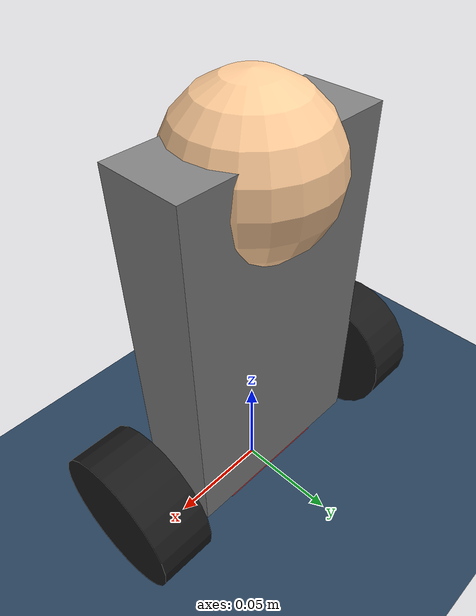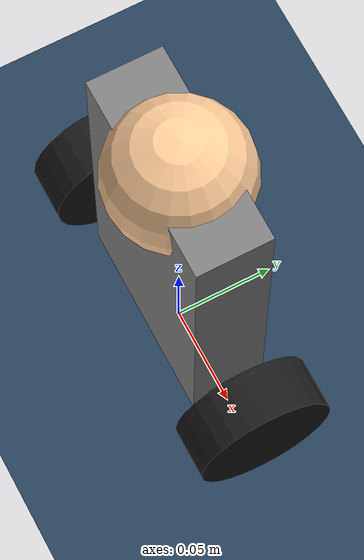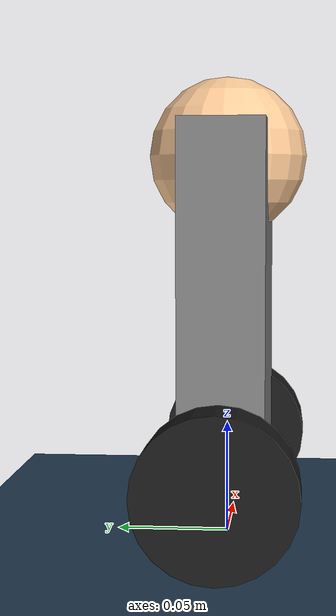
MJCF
<mujoco model="robot scene">
  <compiler angle="radian"/>
  <option timestep="0.000025"/>

  <include file="robot_balance.xml"/>

  <statistic center="0 0 0.1" extent="0.8"/>

  <visual>
    <headlight diffuse="0.6 0.6 0.6" ambient="0.3 0.3 0.3" specular="0 0 0"/>
    <rgba haze="0.15 0.25 0.35 1"/>
    <global azimuth="120" elevation="-20"/>
  </visual>

  <asset>
    <texture type="skybox" builtin="gradient" rgb1="0.8 0.8 0.8" rgb2="0 0 0" width="512" height="3072"/>
    <texture type="2d" name="groundplane" builtin="checker" mark="edge" rgb1="0.2 0.3 0.4" rgb2="0.1 0.2 0.3"
      markrgb="0.8 0.8 0.8" width="300" height="300"/>
    <material name="groundplane" texture="groundplane" texuniform="true" texrepeat="5 5" reflectance="0.2"/>
    <texture type="2d" name="wheel_texture" builtin="checker" mark="edge" rgb1="0.0 0.0 0.0" rgb2="0.2 0.2 0.2"
      markrgb="0.3 0.3 0.3" width="300" height="300"/>
    <material name="wheel_material" texture="wheel_texture" texuniform="true" texrepeat="5 5"/>
  </asset>

  <worldbody>
    <light pos="0 0 1.5" dir="-0.5 -0.5 -1" directional="true"/>
    <geom name="floor" size="0 0 0.05" pos="0 0 0" type="plane" material="groundplane"/>
  </worldbody>

  <contact>
    <pair geom1="floor" geom2="l_wheel_geom" friction="0.4 0.4 0.07 0.001 0.001"/>
    <pair geom1="floor" geom2="r_wheel_geom" friction="0.4 0.4 0.07 0.001 0.001"/>
  </contact>

</mujoco>

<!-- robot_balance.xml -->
<mujoco model="balance">
  <worldbody>
    <!-- ==================== 平衡车 ==================== -->
    <body name="robot_body">
      <joint name="robot_body_joint" type="free"/>
      <geom size="0.05 0.0185 0.0855" pos="0 0 0.0995" type="box"/>
      <inertial pos="0 0.0 0.057" quat="0.707107 0 0 0.707107" mass="0.514" diaginertia="0.001311 0.0012568 0.000487"/>

      <body name="l_wheel" pos="-0.074 0 0.034">
        <inertial pos="0 0 0" quat="0.5 0.5 -0.5 0.5" mass="0.032" diaginertia="2.3e-05 1.3e-05 1.3e-05"/>
        <joint name="torso_l_wheel" type="hinge" pos="0 0 0" axis="-1 0 0" damping="0.1"/>
        <geom name="l_wheel_geom" size="0.034 0.013" quat="0.707107 0 0.707107 0" type="cylinder" material="wheel_material"/>
      </body>
      <body name="r_wheel" pos="0.074 0 0.034">
        <inertial pos="0 0 0" quat="0.5 0.5 -0.5 0.5" mass="0.032" diaginertia="2.3e-05 1.3e-05 1.3e-05"/>
        <joint name="torso_r_wheel" type="hinge" pos="0 0 0" axis="1 0 0" damping="0.1"/>
        <geom name="r_wheel_geom" size="0.034 0.013" quat="0.707107 0 0.707107 0" type="cylinder" material="wheel_material"/>
      </body>
    </body>

    <!-- ==================== 行人（mocap，无关节） ==================== -->
    <body name="human" mocap="true">
      <!-- 身体：扁长方体，明显指向 -y 方向 -->
      <geom type="box" size="0.03 0.015 0.06" pos="0 0 0.065" rgba="0.9 0.2 0.2 1"/>
      <!-- 头部：小球 -->
      <geom type="sphere" size="0.035" pos="0 0 0.17" rgba="1 0.8 0.6 1"/>
    </body>
  </worldbody>

  <actuator>
    <velocity name="motor_l_wheel" joint="torso_l_wheel" gear="1" kv="0.9" ctrlrange="-200 200" ctrllimited="true"/>
    <velocity name="motor_r_wheel" joint="torso_r_wheel" gear="1" kv="0.9" ctrlrange="-200 200" ctrllimited="true"/>
  </actuator>
</mujoco>
